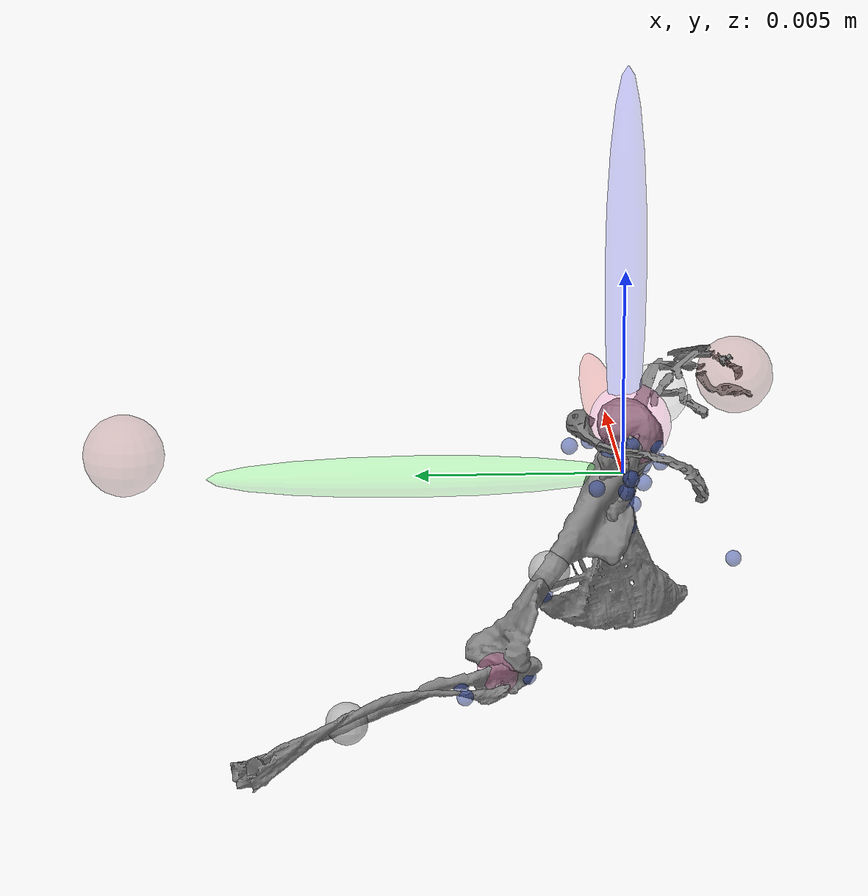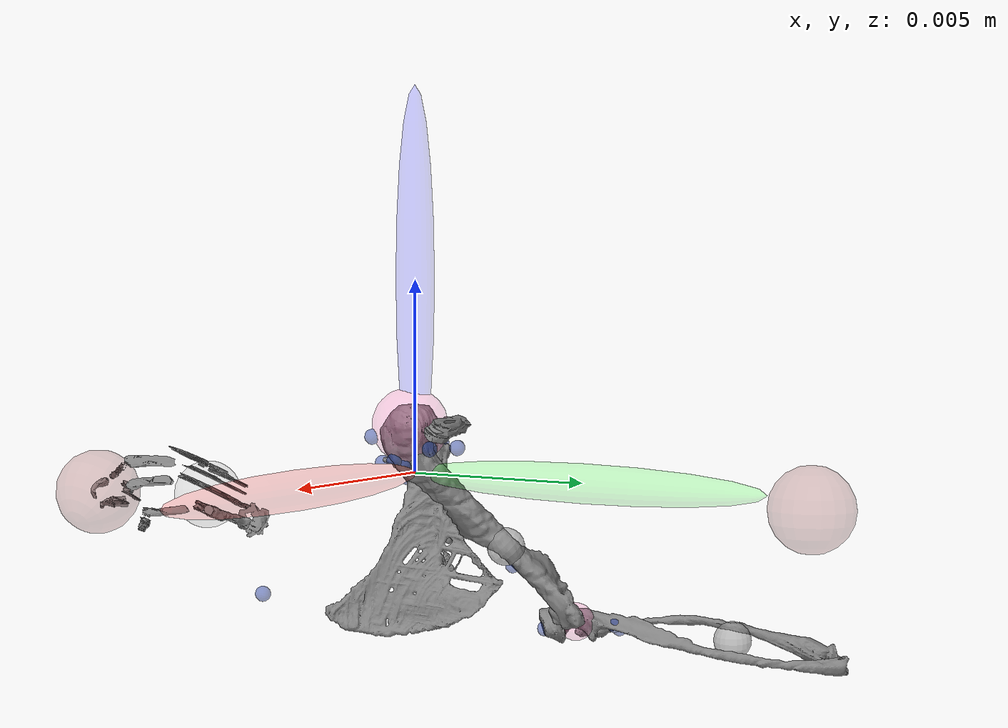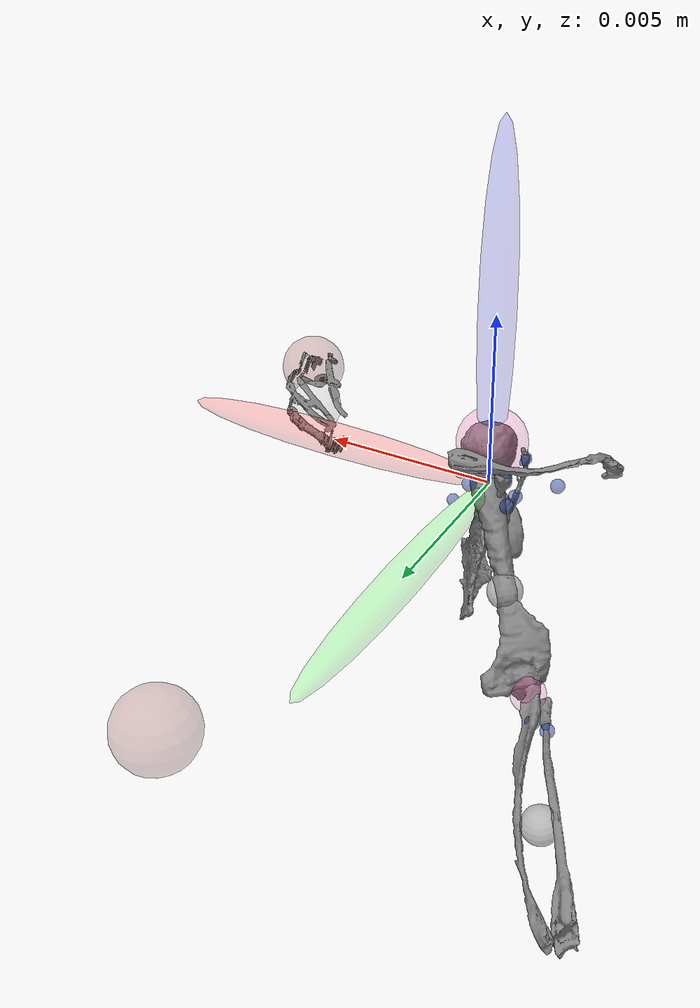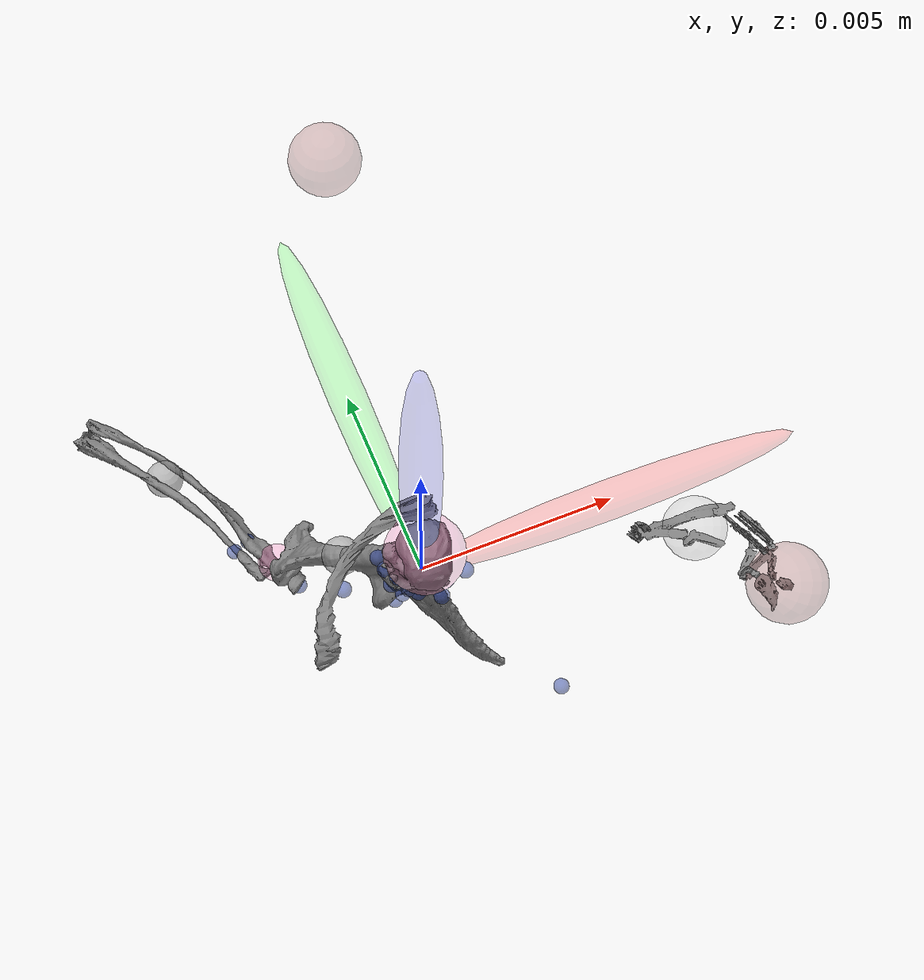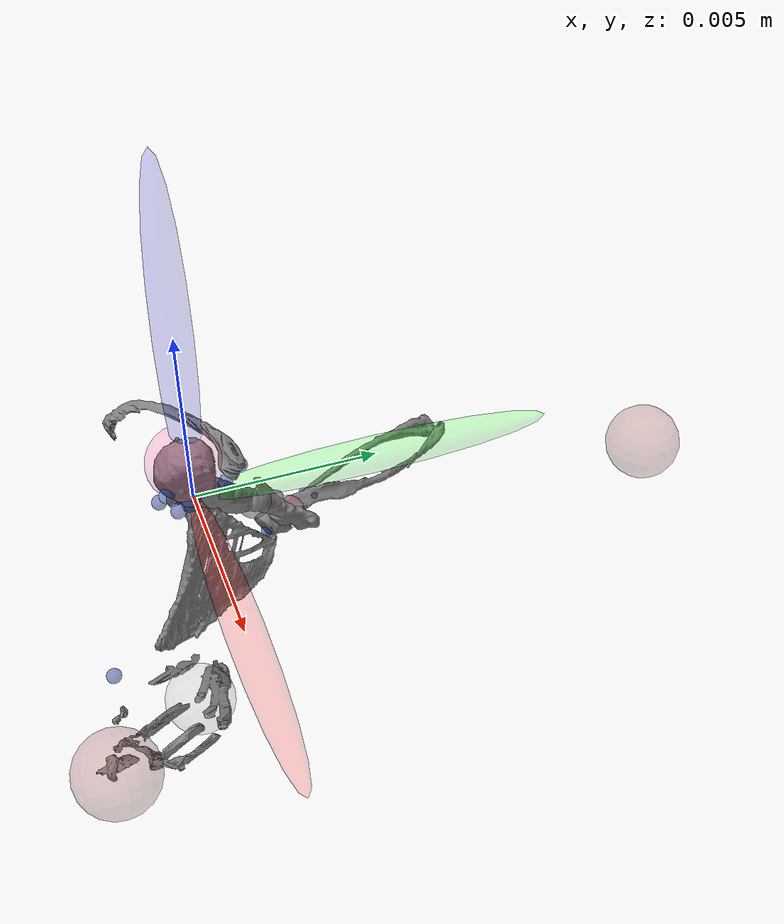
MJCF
<mujoco model="mouse">
	<!--This stuff can all be left alone-->
	<compiler angle="radian">
		<lengthrange mode="muscle"/>
	</compiler>

	<default>
	<geom contype="0" conaffinity="0"/>
	<joint limited="true" damping="0.5" armature=".1" stiffness="0"></joint>
	<tendon width="0.005" rgba=".95 .3 .3 1" limited="false"></tendon>
	</default>
	<option timestep="0.002"/>
	<size njmax="1000" nconmax="400" nkey="1" nuser_jnt="1"/>
	<visual>
		<scale framelength="0.5" framewidth="0.01"/>
		<global offwidth="1920"/>
		<global offheight="1200"/>
	</visual>
	<asset>
		<material name="target" rgba="0.59999999999999998 0.29999999999999999 0.29999999999999999 0.29999999999999999"/>
		<texture type="skybox" builtin="gradient" rgb1="1 1 1" rgb2="0.6 0.8 1" width="256" height="1536"/>
		<texture name="grid" type="2d" builtin="checker" width="512" height="512" rgb1=".1 .2 .3" rgb2=".2 .3 .4"/>
		<material name="grid" texture="grid" texrepeat="1 1" texuniform="true" reflectance=".2"/>
		<mesh file="/root/vast/joshua/stac-mjx/meshes/stl/Bone_Scapula_right_v3.stl"/>
		<mesh file="/root/vast/joshua/stac-mjx/meshes/stl/Bone_Humerus_right_v3.stl"/>
		<mesh file="/root/vast/joshua/stac-mjx/meshes/stl/Bone_Clavicle_right_v3.stl"/>
		<mesh file="/root/vast/joshua/stac-mjx/meshes/stl/Bone_Ulna_right_v3.stl"/>
		<mesh file="/root/vast/joshua/stac-mjx/meshes/stl/Bone_Radius_right_v3.stl"/>
		<mesh file="/root/vast/joshua/stac-mjx/meshes/stl/Bone_Segments_Hand.stl"/>
	</asset>
	<!--This stuff can all be left alone-->
	<worldbody>
		<light directional="true"/>
		<body name="ground" euler="0 0 0">
			<camera name="my_camera" pos="0.04 .004 0.037" fovy="20" quat="0.6532815 0.2705981 0.2705981 0.6532815"/>
			<camera name="my_camera1" pos="0.04 .004 0.037" fovy="20" quat="0.6532815 0.2705981 0.2705981 0.6532815"/>
			<geom name="target" type="sphere" size="0.001" material="target" pos="0.002 0.012 0.0" contype="0" conaffinity="0"/>
			<!-- x-axis in red-->
			<geom type="ellipsoid" size=".0005" rgba="1 0 0 .1" fromto="0 0 0 .01 0 0"/>
			<!-- y-axis in green-->
			<geom type="ellipsoid" size=".0005" rgba="0 1 0 .1" fromto="0 0 0 0 .01 0"/>
			<!-- z-axis in blue-->
			<geom type="ellipsoid" size=".0005" rgba="0 0 1 .1" fromto="0 0 0 0 0 .01"/>

			<!--SOB Clavicle-->
			<body name="clavicle" pos="0 0 0" euler="0 0 0">
				<!--Mesh Geom-->
				<geom type="mesh" mesh="Bone_Clavicle_right_v3" pos="0 0 0.0005"/>

				<!--Muscle Attachment-->
				<!--Pec Clavicular Head-->
				<site name="Pec_C_Origin" pos="-0.002 0 0.0005" rgba=".1 .2 .6 .5" size="0.0002"/>
				<!--Anterior Deltoid-->
				<site name="AD_Origin" pos="-0.000 0.0013 0.0007" rgba=".1 .2 .6 .5" size="0.0002"/>

				<!--SOB Scapula-->
				<body name="scapula" pos="-0.0001 -0.0001 0.0005" euler="-30 -15 0">
					<!--Mesh Geom-->
					<geom type="mesh" mesh="Bone_Scapula_right_v3" pos="0.0 0.0 0.0"/>

					<!--Muscle Attachement-->
					<!--Latissimus Dorsi-->
					<site name="Lat_Origin" pos="-0.0005 -0.004 -0.0035" rgba=".1 .2 .6 .5" size="0.0002"/>
					<!--Posterior Deltoid-->
					<site name="PD_Origin" pos="0.0004 -0.0007 0.0006" rgba=".1 .2 .6 .5" size="0.0002"/>
					<!--Middle Deltoid-->
					<site name="MD_Origin" pos="0.0007 0.0005 0.0005" rgba=".1 .2 .6 .5" size="0.0002"/>

					<!--Triceps Lateral Head-->
					<site name="Triceps_Long_Origin" pos="0 -0.0003 -0.0005" rgba=".1 .2 .6 .5" size="0.0002"/>
					<!--Biceps Long Head-->
					<site name="Biceps_Long_Origin" pos=".0001 0.0003 0.0007" rgba=".1 .2 .6 .5" size="0.0002"/>

					<!--SOB Humerus-->
					<body name="humerus" pos="0 0.0007 -0.0002" euler="-15 0 0">
						<!-- Glenohumeral (aka shoulder) Joint-->
						<site name="shoulder_joint_viz_large" pos="0 0 0" rgba="1 .2 .6 .2" size="0.0010"/>
						<inertial pos="-0.0005 0.0003 -0.004" mass="0.0001258" diaginertia="3e-8 3e-8 3e-8"/>
						<site name="interial_center_humerus" pos="-0.0005 0.0003 -0.004" rgba=".6 .6 .6 .6" size="0.0005"/>
												<!--Mesh Geom-->
						<geom type="mesh" mesh="Bone_Humerus_right_v3" pos="0.0 0.0 0.0"/>

						<joint name="sh_elv" type="hinge" pos="0 0 0" axis="0 1 0" damping="0.001" range="-70 0" limited="true"/>
						<!-- Extension Joint: Yaw around Z-axis -->
						<joint name="sh_extension" type="hinge" pos="0 0 0" axis="0 0 1" damping="0.001" range="-70 40" limited="true"/>
						<!-- Rotation Joint: Roll around X-axis -->
						<joint name="sh_rotation" type="hinge" pos="0 0 0" axis="1 0 0" damping="0.001" range="-25 89" limited="true"/>

						<!--Attachement-->
						<!--Pec Clavicular Head-->
						<site name="Pec_C_P2" pos="-0.0005 0.0009 -0.0003" rgba=".1 .2 .6 .5" size="0.0002"/>
						<site name="Pec_C_Insertion" pos="-0.000 0.001 -0.0005" rgba=".1 .2 .6 .5" size="0.0002"/>

						<!--Latissimus Dorsi-->
						<site name="Lat_P2" pos="-0.001 0.000 -0.0006" rgba=".1 .2 .6 .5" size="0.0002"/>
						<site name="Lat_Insertion" pos="-0.0004 0.0008 -0.0006" rgba=".1 .2 .6 .5" size="0.0002"/>

						<!--Anterior Deltoid-->
						<site name="AD_P2" pos="0.0003 0.0012 -0.0003" rgba=".1 .2 .6 .5" size="0.0002"/>
						<site name="AD_Insertion" pos="0.0003 0.0012 -0.0021" rgba=".1 .2 .6 .5" size="0.0002"/>

						<!--Posterior Deltoid-->
						<site name="PD_P2" pos="0.0003 -0.0003 -0.0006" rgba=".1 .2 .6 .5" size="0.0002"/>
						<site name="PD_Insertion" pos="0.0003 0.001 -0.001" rgba=".1 .2 .6 .5" size="0.0002"/>

						<!--Middle Deltoid-->
						<site name="MD_P2" pos="0.0008 0.0003 -0.0003" rgba=".1 .2 .6 .5" size="0.0002"/>
						<site name="MD_Insertion" pos="0.0003 0.001 -0.0016" rgba=".1 .2 .6 .5" size="0.0002"/>

						<!--Triceps Lateral Head-->
						<site name="Triceps_Lateral_Origin" pos="0.000 -0.000 -0.0018" rgba=".1 .2 .6 .5" size="0.0002"/>

						<!--Brachialis-->
						<site name="Brachialis_Origin" pos="-0.0005 0.0005 -0.0045" rgba=".1 .2 .6 .5" size="0.0002"/>

						<!--Biceps Long Head-->
						<site name="Biceps_Long_P2" pos="-0.0002 0.0009 0.0005" rgba=".1 .2 .6 .5" size="0.0002"/>
						<site name="Biceps_Long_P3" pos="-0.0002 0.0012 -0.0005" rgba=".1 .2 .6 .5" size="0.0002"/>

						<!--SOB Ulna-->
						<body name="ulna" pos="-0.0005 0.0003 -0.0068" euler="-15 0 0">
							<!--Mesh Geom-->
							<geom type="mesh" mesh="Bone_Ulna_right_v3" pos="0.0 0.0 0.0"/>

							<!-- Elbow Joint -->
							<joint name="elbow" pos="0 0 0" axis="1 0 0" stiffness="0.000001" damping="0.00001" range="-80 90" limited="true"/>
							<inertial pos="-0.0009 0.004 0.0005" mass="0.0001258" diaginertia="3e-8 3e-8 3e-8"/>
							<site name="elbow_joint_viz_large" pos="0 0 0" rgba="1 .2 .6 .2" size="0.0005"/>
							<site name="interial_center_ulna" pos="-0.0009 0.004 0.0005" rgba=".6 .6 .6 .6" size="0.0005"/>

							<!--Attachement-->
							<!--Triceps Lateral Head-->
							<site name="Triceps_Long_Insertion" pos="0.0002 -0.0008 0.0002" rgba=".1 .2 .6 .5" size="0.0002"/>

							<!--Triceps Lateral Head-->
							<site name="Triceps_Lateral_Insertion" pos="0.0002 -0.0008 0.0002" rgba=".1 .2 .6 .5" size="0.0002"/>

							<!--Brachialis-->
							<site name="Brachialis_Insertion" pos="-0.0002 0.001 0.0001" rgba=".1 .2 .6 .5" size="0.0002"/>

							<!--SOB Radius-->
							<body name="radius" pos="0.00035 0.0002 0.0002" euler="0 0 0">
								<!--Mesh Geom-->
								<geom type="mesh" mesh="Bone_Radius_right_v3" pos="0.0 0.0 0.0"/>

								<!--Attachement-->
								<!--Biceps Long Head-->
								<site name="Biceps_Long_Insertion" pos="-0.0002 0.001 0.0001" rgba=".1 .2 .6 .5" size="0.0002"/>

								<body name="hand" pos=".003 0.0005 -.009 " euler="-15 -15 -45">
									<geom type="mesh" mesh="Bone_Segments_Hand" pos="0 0 0"/>
									<geom name="finger_tip" type="sphere" size="0.001" material="target" pos="-0.0071999999999999998 0.0019 0.012999999999999999" contype="0" conaffinity="0"/>
									<inertial pos="-0.0048 0.0019 0.012" mass=" 0.00071" diaginertia="7e-08 7e-08 7e-08"/>
									<site name="interial_center_hand" pos="-0.0048 0.0019 0.012" rgba=".6 .6 .6 .1" size="0.0008"/>
								</body>
							</body>
						</body>
					</body>
				</body>
				<!--EOB Ground-->
			</body>
		</body>
	</worldbody>
	<actuator>
		<motor name="sh_elv_act" joint="sh_elv" ctrllimited="true" ctrlrange="-1 1" forcerange="-.001 .001"/>
		<motor name="sh_extension_act" joint="sh_extension" ctrllimited="true" ctrlrange="-1 1" forcerange="-.001 .001"/>
		<motor name="sh_rotation_act" joint="sh_rotation" ctrllimited="true" ctrlrange="-1 1" forcerange="-.001 .001"/>
		<motor name="elbow_act" joint="elbow" ctrllimited="true" ctrlrange="-1 1" forcerange="-.0001 .0001"/>
	</actuator>
</mujoco>
